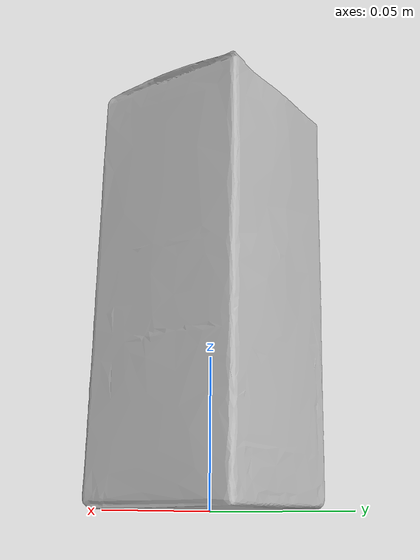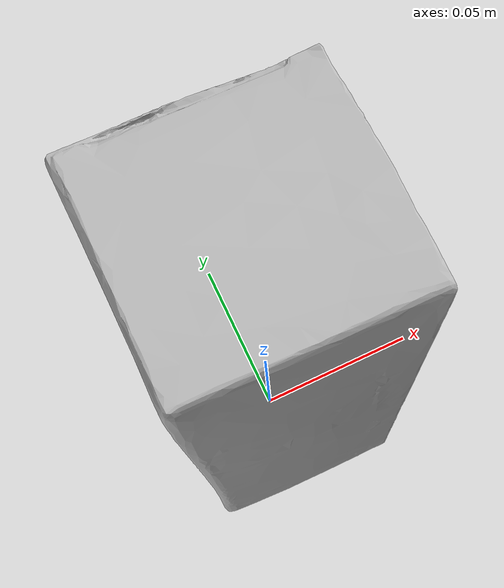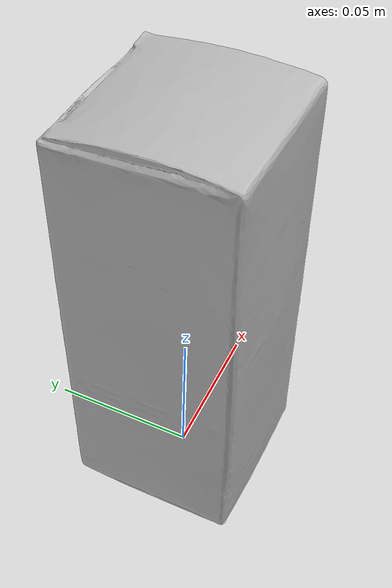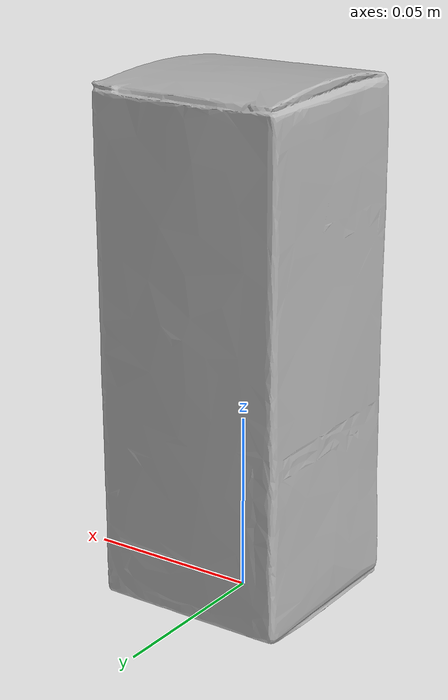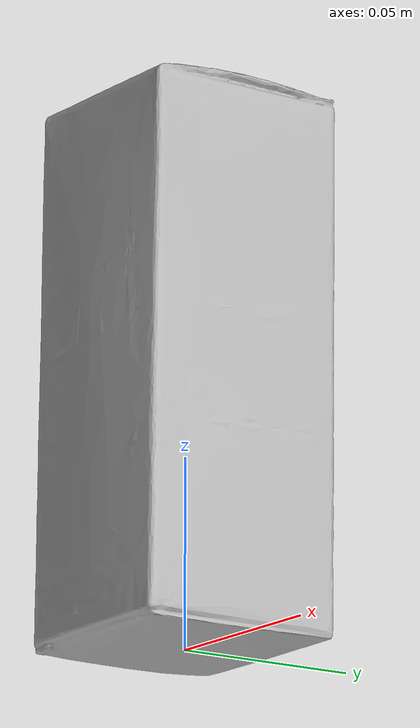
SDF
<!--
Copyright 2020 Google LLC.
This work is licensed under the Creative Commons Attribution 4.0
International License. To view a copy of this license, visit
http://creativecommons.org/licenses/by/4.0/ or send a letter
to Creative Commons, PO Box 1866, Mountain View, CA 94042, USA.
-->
<?xml version="1.0" ?>
<sdf version="1.6">
  <model name="Black_Elderberry_Syrup_54_oz_Gaia_Herbs">
    <link name="link_0">
      <visual name="visual">
        <geometry>
          <mesh>
            <uri>meshes/model.obj</uri>
          </mesh>
        </geometry>
      </visual>
      <collision name="collision_0">
      <surface>
        <contact>
          <ode>
            <kp>2000000.0</kp>
            <kd>5000</kd>
            <max_vel>0.01</max_vel>
            <min_depth>0.001</min_depth>
          </ode>
        </contact>
      </surface>
        <geometry>
          <mesh>
            <uri>meshes/model.obj</uri>
          </mesh>
        </geometry>
      </collision>
      <inertial>
        <mass>0.5</mass>
        <inertia>
          <ixx>0.003366666666666667</ixx>
          <iyy>0.0008666666666666667</iyy>
          <izz>0.0041666666666666675</izz>
        </inertia>
      </inertial>
    </link>
  </model>
</sdf>
